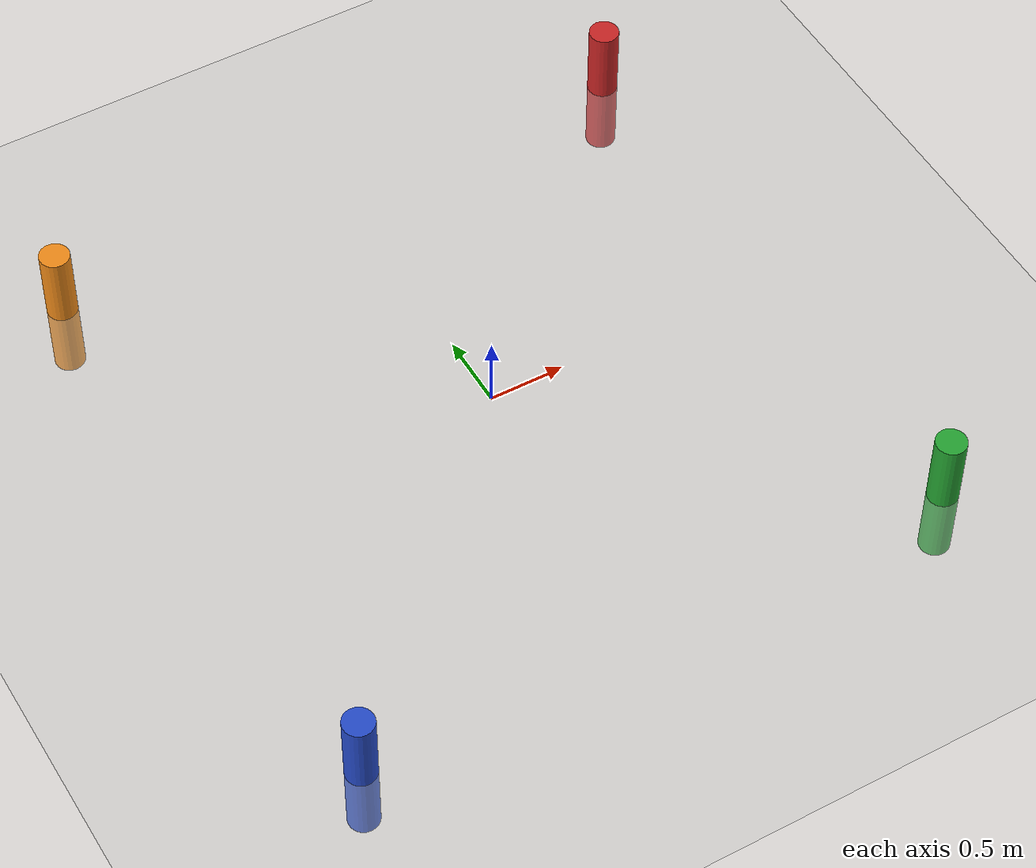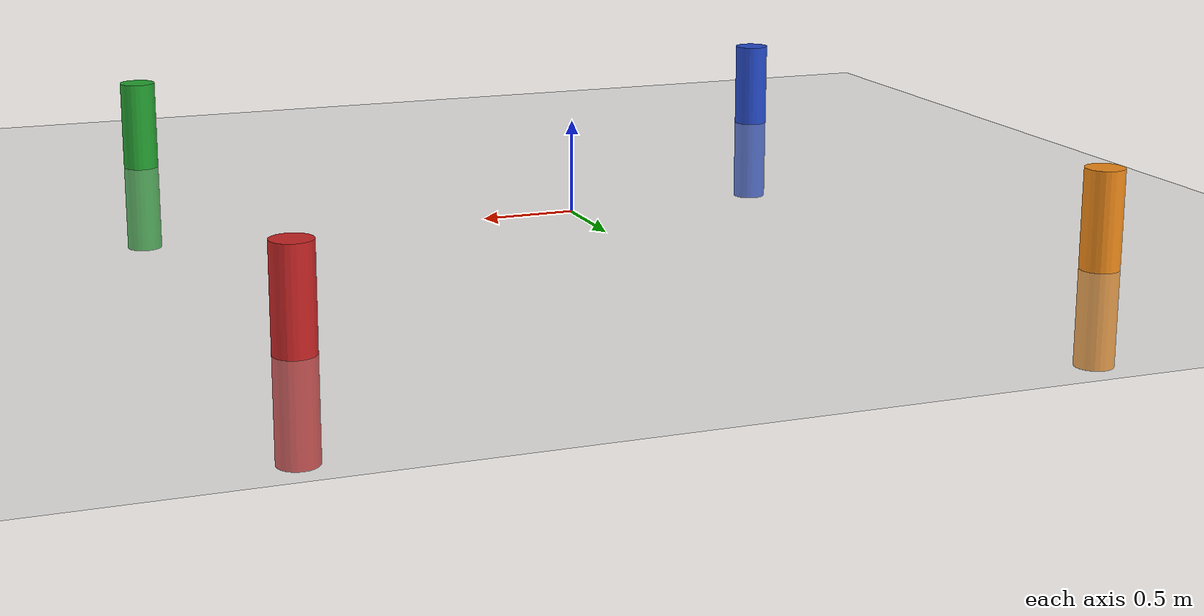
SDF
<sdf version="1.6">
 <world name="default">
  <light name="sun" type="directional">
   <pose>0 0 10 0 -0 0</pose>
   <diffuse>0.8 0.8 0.8 1</diffuse>
   <specular>0.2 0.2 0.2 1</specular>
   <attenuation>
    <range>1000</range>
    <constant>0.9</constant>
    <linear>0.01</linear>
    <quadratic>0.001</quadratic>
   </attenuation>
   <direction>-0.5 0.1 -0.9</direction>
  </light>
  <model name="ground_plane">
   <static>1</static>
   <link name="link">
    <collision name="collision">
     <geometry><plane><normal>0 0 1</normal><size>100 100</size></plane></geometry>
     <surface>
      <contact><collide_bitmask>65535</collide_bitmask></contact>
      <friction><ode><mu>100</mu><mu2>50</mu2></ode></friction>
     </surface>
    </collision>
    <visual name="visual">
     <cast_shadows>0</cast_shadows>
     <geometry><plane><normal>0 0 1</normal><size>100 100</size></plane></geometry>
     <material>
      <script><uri>file://media/materials/scripts/gazebo.material</uri><name>Gazebo/Grey</name></script>
     </material>
    </visual>
   </link>
  </model>
  <gravity>0 0 -9.8</gravity>
  <magnetic_field>6e-06 2.3e-05 -4.2e-05</magnetic_field>
  <atmosphere type="adiabatic"/>
  <physics name="default_physics" default="0" type="ode">
   <max_step_size>0.001</max_step_size>
   <real_time_factor>1</real_time_factor>
   <real_time_update_rate>1000</real_time_update_rate>
  </physics>
  <scene><ambient>0.4 0.4 0.4 1</ambient><background>0.7 0.7 0.7 1</background><shadows>1</shadows></scene>
  <spherical_coordinates>
   <surface_model>EARTH_WGS84</surface_model>
   <latitude_deg>0</latitude_deg>
   <longitude_deg>0</longitude_deg>
   <elevation>0</elevation>
   <heading_deg>0</heading_deg>
  </spherical_coordinates>
  <model name="1">
   <pose>2 2 0 0 -0 0</pose>
   <link name="link">
    <inertial>
     <mass>10000</mass>
     <inertia><ixx>1000</ixx><ixy>0</ixy><ixz>0</ixz><iyy>10000</iyy><iyz>0</iyz><izz>0.125</izz></inertia>
    </inertial>
    <collision name="collision">
     <geometry><cylinder><radius>0.1</radius><length>1</length></cylinder></geometry>
    </collision>
    <visual name="visual">
     <geometry><cylinder><radius>0.1</radius><length>1</length></cylinder></geometry>
     <material>
      <script><name>Gazebo/Red</name><uri>file://media/materials/scripts/gazebo.material</uri></script>
     </material>
    </visual>
   </link>
  </model>
  <model name="2">
   <pose>2 -2 0 0 -0 0</pose>
   <link name="link">
    <inertial>
     <mass>10000</mass>
     <inertia><ixx>1000</ixx><ixy>0</ixy><ixz>0</ixz><iyy>10000</iyy><iyz>0</iyz><izz>0.125</izz></inertia>
    </inertial>
    <collision name="collision">
     <geometry><cylinder><radius>0.1</radius><length>1</length></cylinder></geometry>
    </collision>
    <visual name="visual">
     <geometry><cylinder><radius>0.1</radius><length>1</length></cylinder></geometry>
     <material>
      <script><name>Gazebo/Green</name><uri>file://media/materials/scripts/gazebo.material</uri></script>
     </material>
    </visual>
   </link>
  </model>
  <model name="3">
   <pose>-2 -2 0 0 -0 0</pose>
   <link name="link">
    <inertial>
     <mass>10000</mass>
     <inertia><ixx>1000</ixx><ixy>0</ixy><ixz>0</ixz><iyy>10000</iyy><iyz>0</iyz><izz>0.125</izz></inertia>
    </inertial>
    <collision name="collision">
     <geometry><cylinder><radius>0.1</radius><length>1</length></cylinder></geometry>
    </collision>
    <visual name="visual">
     <geometry><cylinder><radius>0.1</radius><length>1</length></cylinder></geometry>
     <material>
      <script><name>Gazebo/Blue</name><uri>file://media/materials/scripts/gazebo.material</uri></script>
     </material>
    </visual>
   </link>
  </model>
  <model name="4">
   <pose>-2 2 0 0 -0 0</pose>
   <link name="link">
    <inertial>
     <mass>10000</mass>
     <inertia><ixx>1000</ixx><ixy>0</ixy><ixz>0</ixz><iyy>10000</iyy><iyz>0</iyz><izz>0.125</izz></inertia>
    </inertial>
    <collision name="collision">
     <geometry><cylinder><radius>0.1</radius><length>1</length></cylinder></geometry>
    </collision>
    <visual name="visual">
     <geometry><cylinder><radius>0.1</radius><length>1</length></cylinder></geometry>
     <material>
      <script><name>Gazebo/Orange</name><uri>file://media/materials/scripts/gazebo.material</uri></script>
     </material>
    </visual>
   </link>
  </model>
 </world>
</sdf>
